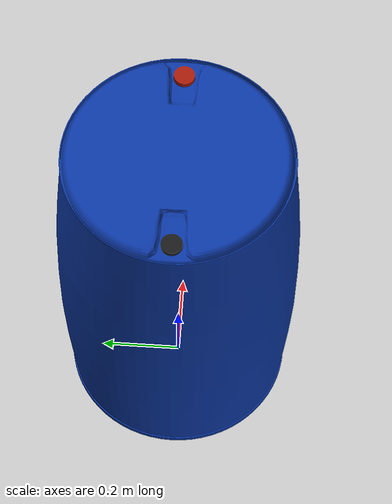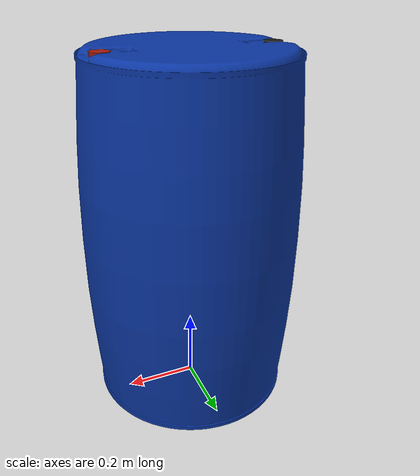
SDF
<?xml version="1.0"?>
<sdf version="1.4">
  <model name="barrel3_100">
    <static>true</static>
    <link name="link">
      <collision name="collision">
        <geometry>
          <mesh>
             <uri>model://barrel3_100/models/barrel100.dae</uri>

          </mesh>
        </geometry>
      </collision>
      <visual name="visual">
         <geometry>
          <mesh>
		<uri>model://barrel3_100/models/barrel100.dae</uri>

          </mesh>
        </geometry>
      </visual>
    </link>
  </model>
</sdf>
